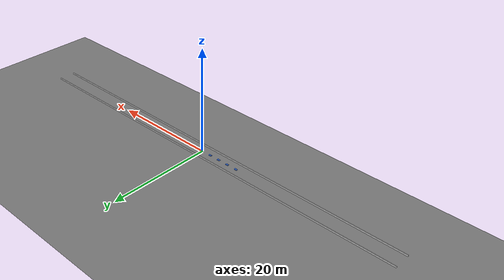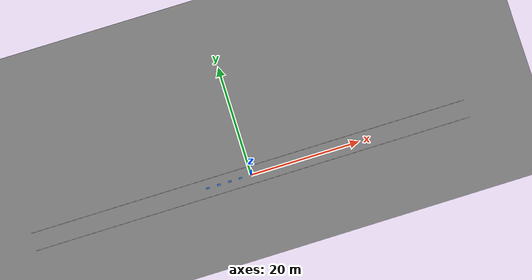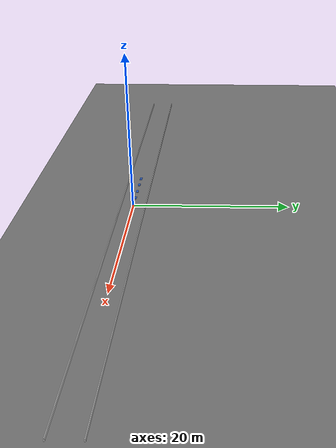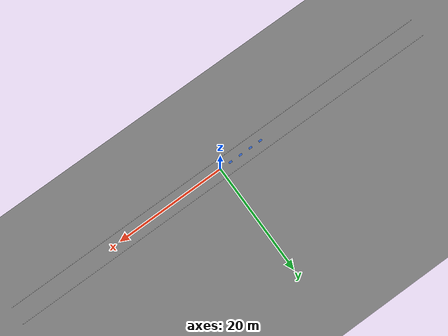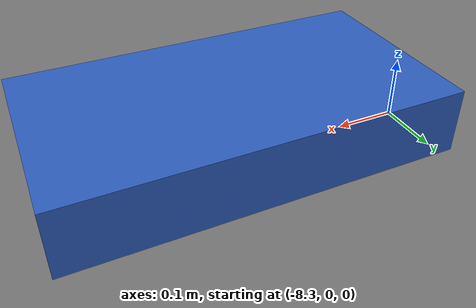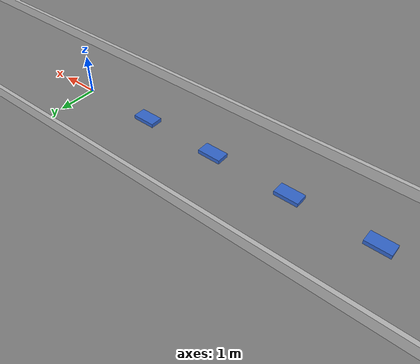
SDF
<?xml version="1.0"?>
<sdf version="1.9">
  <world name="spike">
    <!-- 1 ms physics, run as fast as possible; the bridge steps it in lockstep. -->
    <physics name="1ms" type="dart"><max_step_size>0.001</max_step_size><real_time_factor>0</real_time_factor></physics>
    <plugin filename="gz-sim-physics-system" name="gz::sim::systems::Physics"/>
    <plugin filename="gz-sim-sensors-system" name="gz::sim::systems::Sensors"><render_engine>ogre2</render_engine></plugin>
    <plugin filename="gz-sim-scene-broadcaster-system" name="gz::sim::systems::SceneBroadcaster"/>
    <plugin filename="gz-sim-user-commands-system" name="gz::sim::systems::UserCommands"/>
    <plugin filename="gz-sim-contact-system" name="gz::sim::systems::Contact"/>
    <plugin filename="gz-sim-imu-system" name="gz::sim::systems::Imu"/>
    <plugin filename="CaatcLockstepPlant" name="caatc::LockstepPlant">
      <model>car1</model>
      <model>car2</model>
      <model>car3</model>
      <model>car4</model>
      <wheel_radius>0.05</wheel_radius><wheel_base>0.3302</wheel_base><track_width>0.2</track_width>
      <steer_max>0.4189</steer_max><steer_rate_max>3.2</steer_rate_max><steer_gain>30</steer_gain>
      <accel_max>9.51</accel_max><speed_max>20</speed_max>
    </plugin>
    <light type="directional" name="sun"><pose>0 0 10 0 0 0</pose><direction>-0.5 0.1 -0.9</direction><diffuse>0.8 0.8 0.8 1</diffuse></light>
    <model name="ground"><static>true</static><link name="l">
      <collision name="c"><geometry><plane><normal>0 0 1</normal><size>200 200</size></plane></geometry>
        <surface><friction><ode><mu>1.0</mu><mu2>1.0</mu2></ode></friction></surface></collision>
      <visual name="v"><geometry><plane><normal>0 0 1</normal><size>200 200</size></plane></geometry>
        <material><ambient>0.5 0.5 0.5 1</ambient><diffuse>0.5 0.5 0.5 1</diffuse></material></visual></link></model>
    <!-- two low walls, 1.6 m either side of the centreline, so the lidar sees something -->
    <model name="wall_left"><static>true</static><pose>0 1.6 0.15 0 0 0</pose><link name="l">
      <collision name="c"><geometry><box><size>80 0.1 0.3</size></box></geometry></collision>
      <visual name="v"><geometry><box><size>80 0.1 0.3</size></box></geometry></visual></link></model>
    <model name="wall_right"><static>true</static><pose>0 -1.6 0.15 0 0 0</pose><link name="l">
      <collision name="c"><geometry><box><size>80 0.1 0.3</size></box></geometry></collision>
      <visual name="v"><geometry><box><size>80 0.1 0.3</size></box></geometry></visual></link></model>

    <include>
      <uri>model://racecar</uri>
      <name>car1</name>
      <pose>-2.0 0 0.05 0 0 0</pose>
    </include>

    <include>
      <uri>model://racecar</uri>
      <name>car2</name>
      <pose>-4.0 0 0.05 0 0 0</pose>
    </include>

    <include>
      <uri>model://racecar</uri>
      <name>car3</name>
      <pose>-6.0 0 0.05 0 0 0</pose>
    </include>

    <include>
      <uri>model://racecar</uri>
      <name>car4</name>
      <pose>-8.0 0 0.05 0 0 0</pose>
    </include>
  </world>
</sdf>

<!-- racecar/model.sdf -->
<sdf version="1.9">
  <model name="racecar">
    <!-- Origin at the centre of gravity, z = wheel radius so the wheels touch the ground. -->
    <link name="chassis">
      <inertial><mass>3.74</mass><inertia><ixx>0.0330678</ixx><iyy>0.107961</iyy><izz>0.134796</izz></inertia></inertial>
      <collision name="c"><pose>0 0 0.03 0 0 0</pose><geometry><box><size>0.58 0.31 0.1</size></box></geometry></collision>
      <visual name="v"><pose>0 0 0.03 0 0 0</pose><geometry><box><size>0.58 0.31 0.1</size></box></geometry>
        <material><ambient>0.2 0.4 0.8 1</ambient><diffuse>0.2 0.4 0.8 1</diffuse></material></visual>
      <!-- the chassis box is the car's footprint; this sensor says when it touches anything -->
      <sensor name="bumper" type="contact">
        <contact><collision>c</collision></contact>
        <update_rate>100</update_rate><always_on>1</always_on>
      </sensor>
      <sensor name="imu" type="imu">
        <always_on>1</always_on><update_rate>100</update_rate>
      </sensor>
      <sensor name="lidar" type="gpu_lidar">
        <!-- Hokuyo UST-10LX as the 2020 model had it: 1081 points over 270 degrees, 0.1 to 10 m, 40 Hz -->
        <pose>0.09355 0 0.115 0 0 0</pose>
        <update_rate>40</update_rate>
        <lidar>
          <scan><horizontal><samples>1081</samples><resolution>1</resolution>
            <min_angle>-2.3561944902</min_angle><max_angle>2.3561944902</max_angle></horizontal></scan>
          <range><min>0.1</min><max>10.0</max><resolution>0.01</resolution></range>
        </lidar>
        <always_on>1</always_on><visualize>0</visualize>
      </sensor>
    </link>

    <link name="rear_left_wheel">
      <pose>-0.17145 0.1 0 1.5708 0 0</pose>
      <inertial><mass>0.34</mass><inertia><ixx>0.000269875</ixx><iyy>0.000269875</iyy><izz>0.000425</izz></inertia></inertial>
      <collision name="c"><geometry><cylinder><radius>0.05</radius><length>0.045</length></cylinder></geometry>
        <surface><friction><ode><mu>1.0</mu><mu2>1.0</mu2></ode></friction></surface></collision>
      <visual name="v"><geometry><cylinder><radius>0.05</radius><length>0.045</length></cylinder></geometry>
        <material><ambient>0.1 0.1 0.1 1</ambient><diffuse>0.1 0.1 0.1 1</diffuse></material></visual>
    </link>

    <link name="rear_right_wheel">
      <pose>-0.17145 -0.1 0 1.5708 0 0</pose>
      <inertial><mass>0.34</mass><inertia><ixx>0.000269875</ixx><iyy>0.000269875</iyy><izz>0.000425</izz></inertia></inertial>
      <collision name="c"><geometry><cylinder><radius>0.05</radius><length>0.045</length></cylinder></geometry>
        <surface><friction><ode><mu>1.0</mu><mu2>1.0</mu2></ode></friction></surface></collision>
      <visual name="v"><geometry><cylinder><radius>0.05</radius><length>0.045</length></cylinder></geometry>
        <material><ambient>0.1 0.1 0.1 1</ambient><diffuse>0.1 0.1 0.1 1</diffuse></material></visual>
    </link>

    <link name="front_left_hinge">
      <pose>0.15875 0.1 0 0 0 0</pose>
      <inertial><mass>0.1</mass><inertia><ixx>4e-6</ixx><iyy>4e-6</iyy><izz>4e-6</izz></inertia></inertial>
    </link>

    <link name="front_right_hinge">
      <pose>0.15875 -0.1 0 0 0 0</pose>
      <inertial><mass>0.1</mass><inertia><ixx>4e-6</ixx><iyy>4e-6</iyy><izz>4e-6</izz></inertia></inertial>
    </link>

    <link name="front_left_wheel">
      <pose>0.15875 0.1 0 1.5708 0 0</pose>
      <inertial><mass>0.34</mass><inertia><ixx>0.000269875</ixx><iyy>0.000269875</iyy><izz>0.000425</izz></inertia></inertial>
      <collision name="c"><geometry><cylinder><radius>0.05</radius><length>0.045</length></cylinder></geometry>
        <surface><friction><ode><mu>1.0</mu><mu2>1.0</mu2></ode></friction></surface></collision>
      <visual name="v"><geometry><cylinder><radius>0.05</radius><length>0.045</length></cylinder></geometry>
        <material><ambient>0.1 0.1 0.1 1</ambient><diffuse>0.1 0.1 0.1 1</diffuse></material></visual>
    </link>

    <link name="front_right_wheel">
      <pose>0.15875 -0.1 0 1.5708 0 0</pose>
      <inertial><mass>0.34</mass><inertia><ixx>0.000269875</ixx><iyy>0.000269875</iyy><izz>0.000425</izz></inertia></inertial>
      <collision name="c"><geometry><cylinder><radius>0.05</radius><length>0.045</length></cylinder></geometry>
        <surface><friction><ode><mu>1.0</mu><mu2>1.0</mu2></ode></friction></surface></collision>
      <visual name="v"><geometry><cylinder><radius>0.05</radius><length>0.045</length></cylinder></geometry>
        <material><ambient>0.1 0.1 0.1 1</ambient><diffuse>0.1 0.1 0.1 1</diffuse></material></visual>
    </link>

    <joint name="rear_left_wheel_joint" type="revolute">
      <parent>chassis</parent><child>rear_left_wheel</child>
      <axis><xyz expressed_in="__model__">0 1 0</xyz><limit><lower>-1e16</lower><upper>1e16</upper></limit></axis>
    </joint>
    <joint name="rear_right_wheel_joint" type="revolute">
      <parent>chassis</parent><child>rear_right_wheel</child>
      <axis><xyz expressed_in="__model__">0 1 0</xyz><limit><lower>-1e16</lower><upper>1e16</upper></limit></axis>
    </joint>
    <joint name="front_left_steer_joint" type="revolute">
      <parent>chassis</parent><child>front_left_hinge</child>
      <axis><xyz>0 0 1</xyz><limit><lower>-0.4189</lower><upper>0.4189</upper><effort>10</effort><velocity>3.2</velocity></limit></axis>
    </joint>
    <joint name="front_right_steer_joint" type="revolute">
      <parent>chassis</parent><child>front_right_hinge</child>
      <axis><xyz>0 0 1</xyz><limit><lower>-0.4189</lower><upper>0.4189</upper><effort>10</effort><velocity>3.2</velocity></limit></axis>
    </joint>
    <joint name="front_left_wheel_joint" type="revolute">
      <parent>front_left_hinge</parent><child>front_left_wheel</child>
      <axis><xyz expressed_in="__model__">0 1 0</xyz><limit><lower>-1e16</lower><upper>1e16</upper></limit></axis>
    </joint>
    <joint name="front_right_wheel_joint" type="revolute">
      <parent>front_right_hinge</parent><child>front_right_wheel</child>
      <axis><xyz expressed_in="__model__">0 1 0</xyz><limit><lower>-1e16</lower><upper>1e16</upper></limit></axis>
    </joint>

    <plugin filename="gz-sim-joint-state-publisher-system" name="gz::sim::systems::JointStatePublisher">
      <joint_name>front_left_steer_joint</joint_name>
      <joint_name>front_right_steer_joint</joint_name>
      <joint_name>rear_left_wheel_joint</joint_name>
      <joint_name>rear_right_wheel_joint</joint_name>
    </plugin>
  </model>
</sdf>
